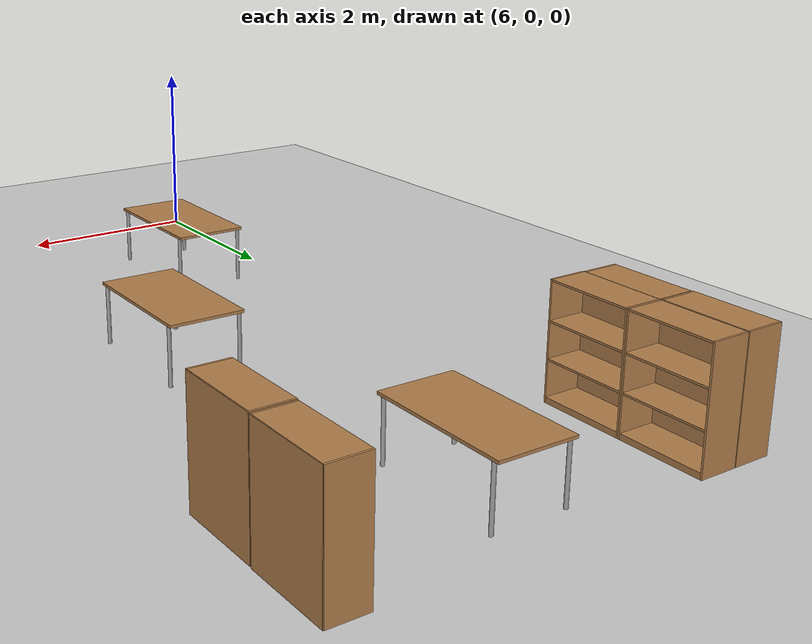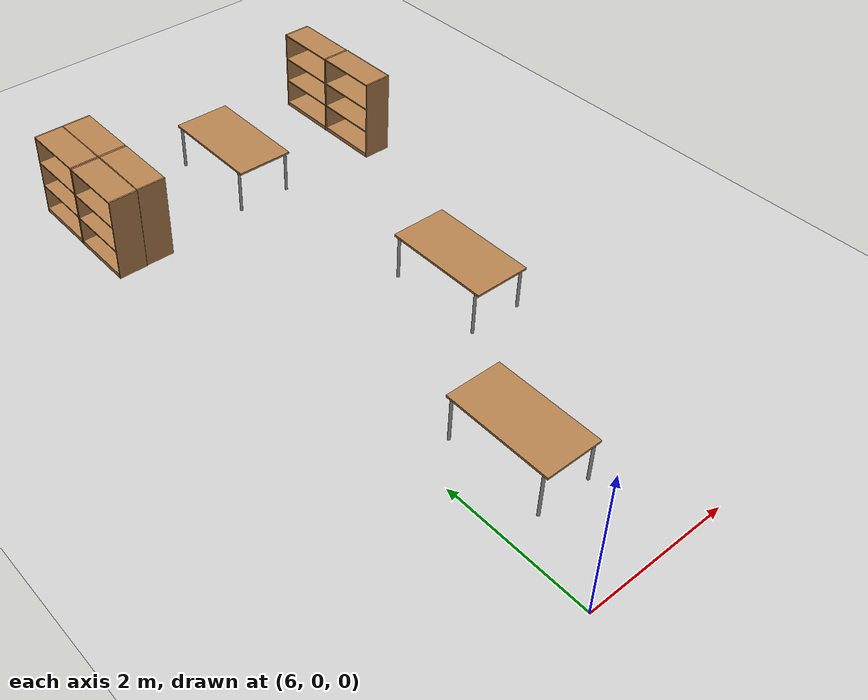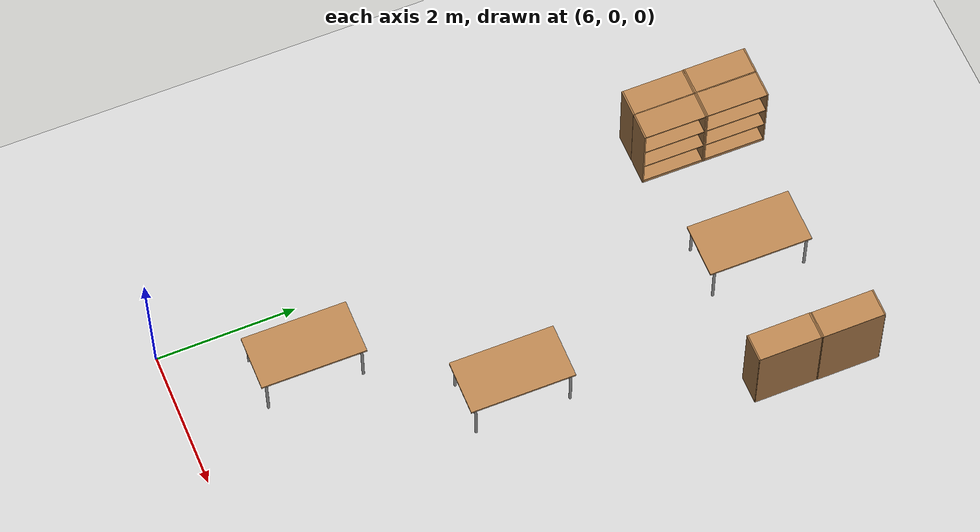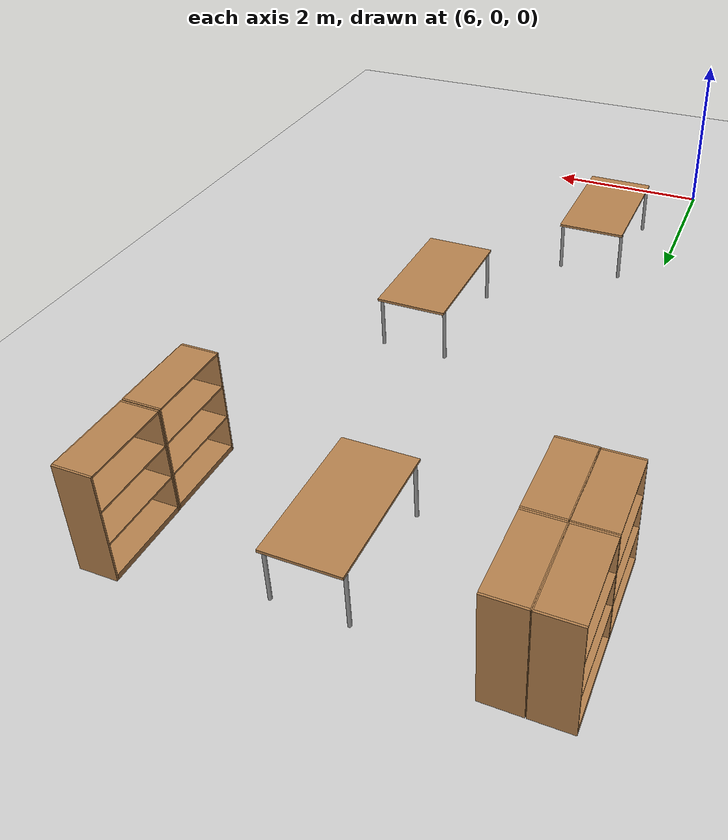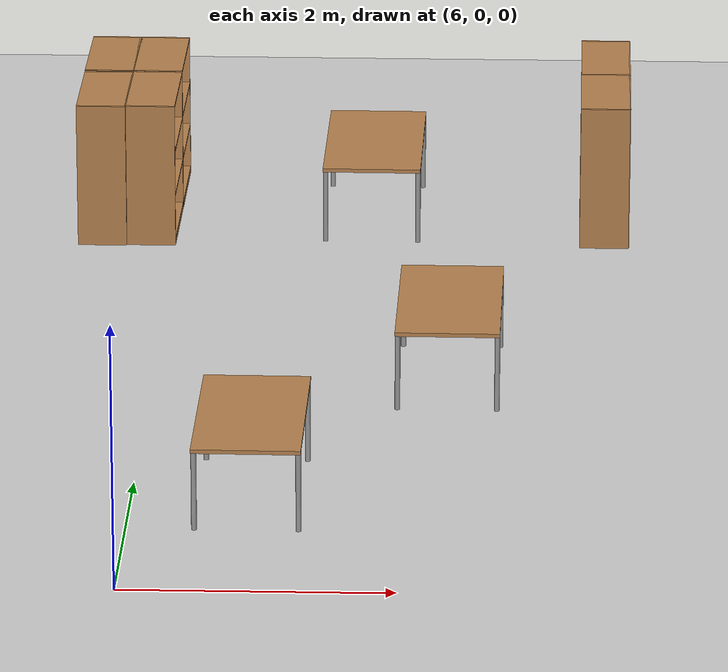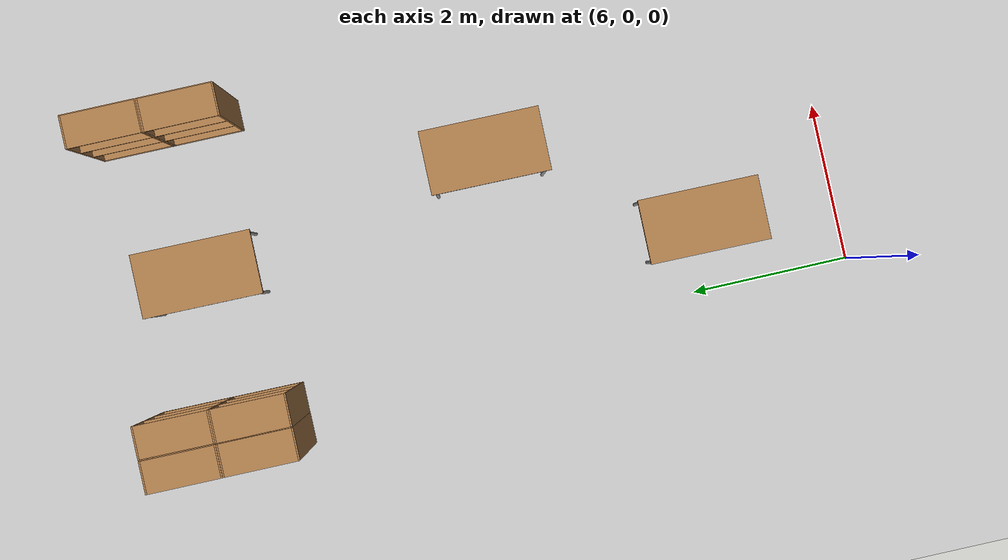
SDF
<sdf version="1.7">
 <world name="default">
  <model name="ground_plane">
   <static>1</static>
   <link name="link">
    <collision name="collision_collision">
     <geometry><plane><normal>0 0 1</normal><size>100 100</size></plane></geometry>
     <surface>
      <contact><collide_bitmask>65535</collide_bitmask></contact>
      <friction><ode><mu>100</mu><mu2>50</mu2></ode></friction>
     </surface>
    </collision>
    <visual name="visual">
     <cast_shadows>0</cast_shadows>
     <geometry><plane><normal>0 0 1</normal><size>100 100</size></plane></geometry>
     <material>
      <script><uri>file://media/materials/scripts/gazebo.material</uri><name>Gazebo/Grey</name></script>
     </material>
    </visual>
   </link>
  </model>
  <model name="bookshelf">
   <static>1</static>
   <link name="link">
    <inertial><mass>1</mass></inertial>
    <collision name="collision_back">
     <pose>0 0.005 0.6 0 -0 0</pose>
     <geometry><box><size>0.9 0.01 1.2</size></box></geometry>
    </collision>
    <visual name="visual1">
     <pose>0 0.005 0.6 0 -0 0</pose>
     <geometry><box><size>0.9 0.01 1.2</size></box></geometry>
     <material>
      <script><uri>file://media/materials/scripts/gazebo.material</uri><name>Gazebo/Wood</name></script>
     </material>
    </visual>
    <collision name="collision_left_side">
     <pose>0.45 -0.195 0.6 0 -0 0</pose>
     <geometry><box><size>0.02 0.4 1.2</size></box></geometry>
    </collision>
    <visual name="visual2">
     <pose>0.45 -0.195 0.6 0 -0 0</pose>
     <geometry><box><size>0.02 0.4 1.2</size></box></geometry>
     <material>
      <script><uri>file://media/materials/scripts/gazebo.material</uri><name>Gazebo/Wood</name></script>
     </material>
    </visual>
    <collision name="collision_right_side">
     <pose>-0.45 -0.195 0.6 0 -0 0</pose>
     <geometry><box><size>0.02 0.4 1.2</size></box></geometry>
    </collision>
    <visual name="visual3">
     <pose>-0.45 -0.195 0.6 0 -0 0</pose>
     <geometry><box><size>0.02 0.4 1.2</size></box></geometry>
     <material>
      <script><uri>file://media/materials/scripts/gazebo.material</uri><name>Gazebo/Wood</name></script>
     </material>
    </visual>
    <collision name="collision_bottom">
     <pose>0 -0.195 0.03 0 -0 0</pose>
     <geometry><box><size>0.88 0.4 0.06</size></box></geometry>
    </collision>
    <visual name="visual4">
     <pose>0 -0.195 0.03 0 -0 0</pose>
     <geometry><box><size>0.88 0.4 0.06</size></box></geometry>
     <material>
      <script><uri>file://media/materials/scripts/gazebo.material</uri><name>Gazebo/Wood</name></script>
     </material>
    </visual>
    <collision name="collision_top">
     <pose>0 -0.195 1.19 0 -0 0</pose>
     <geometry><box><size>0.88 0.4 0.02</size></box></geometry>
    </collision>
    <visual name="visual5">
     <pose>0 -0.195 1.19 0 -0 0</pose>
     <geometry><box><size>0.88 0.4 0.02</size></box></geometry>
     <material>
      <script><uri>file://media/materials/scripts/gazebo.material</uri><name>Gazebo/Wood</name></script>
     </material>
    </visual>
    <collision name="collision_low_shelf">
     <pose>0 -0.195 0.43 0 -0 0</pose>
     <geometry><box><size>0.88 0.4 0.02</size></box></geometry>
    </collision>
    <visual name="visual6">
     <pose>0 -0.195 0.43 0 -0 0</pose>
     <geometry><box><size>0.88 0.4 0.02</size></box></geometry>
     <material>
      <script><uri>file://media/materials/scripts/gazebo.material</uri><name>Gazebo/Wood</name></script>
     </material>
    </visual>
    <collision name="collision_high_shelf">
     <pose>0 -0.195 0.8 0 -0 0</pose>
     <geometry><box><size>0.88 0.4 0.02</size></box></geometry>
    </collision>
    <visual name="visual7">
     <pose>0 -0.195 0.8 0 -0 0</pose>
     <geometry><box><size>0.88 0.4 0.02</size></box></geometry>
     <material>
      <script><uri>file://media/materials/scripts/gazebo.material</uri><name>Gazebo/Wood</name></script>
     </material>
    </visual>
   </link>
   <pose>9.69489 8.56092 0 0 0 -1.57362</pose>
  </model>
  <model name="bookshelf_clone">
   <static>1</static>
   <link name="link">
    <inertial><mass>1</mass></inertial>
    <collision name="collision_back">
     <pose>0 0.005 0.6 0 -0 0</pose>
     <geometry><box><size>0.9 0.01 1.2</size></box></geometry>
    </collision>
    <visual name="visual1">
     <pose>0 0.005 0.6 0 -0 0</pose>
     <geometry><box><size>0.9 0.01 1.2</size></box></geometry>
     <material>
      <script><uri>file://media/materials/scripts/gazebo.material</uri><name>Gazebo/Wood</name></script>
     </material>
    </visual>
    <collision name="collision_left_side">
     <pose>0.45 -0.195 0.6 0 -0 0</pose>
     <geometry><box><size>0.02 0.4 1.2</size></box></geometry>
    </collision>
    <visual name="visual2">
     <pose>0.45 -0.195 0.6 0 -0 0</pose>
     <geometry><box><size>0.02 0.4 1.2</size></box></geometry>
     <material>
      <script><uri>file://media/materials/scripts/gazebo.material</uri><name>Gazebo/Wood</name></script>
     </material>
    </visual>
    <collision name="collision_right_side">
     <pose>-0.45 -0.195 0.6 0 -0 0</pose>
     <geometry><box><size>0.02 0.4 1.2</size></box></geometry>
    </collision>
    <visual name="visual3">
     <pose>-0.45 -0.195 0.6 0 -0 0</pose>
     <geometry><box><size>0.02 0.4 1.2</size></box></geometry>
     <material>
      <script><uri>file://media/materials/scripts/gazebo.material</uri><name>Gazebo/Wood</name></script>
     </material>
    </visual>
    <collision name="collision_bottom">
     <pose>0 -0.195 0.03 0 -0 0</pose>
     <geometry><box><size>0.88 0.4 0.06</size></box></geometry>
    </collision>
    <visual name="visual4">
     <pose>0 -0.195 0.03 0 -0 0</pose>
     <geometry><box><size>0.88 0.4 0.06</size></box></geometry>
     <material>
      <script><uri>file://media/materials/scripts/gazebo.material</uri><name>Gazebo/Wood</name></script>
     </material>
    </visual>
    <collision name="collision_top">
     <pose>0 -0.195 1.19 0 -0 0</pose>
     <geometry><box><size>0.88 0.4 0.02</size></box></geometry>
    </collision>
    <visual name="visual5">
     <pose>0 -0.195 1.19 0 -0 0</pose>
     <geometry><box><size>0.88 0.4 0.02</size></box></geometry>
     <material>
      <script><uri>file://media/materials/scripts/gazebo.material</uri><name>Gazebo/Wood</name></script>
     </material>
    </visual>
    <collision name="collision_low_shelf">
     <pose>0 -0.195 0.43 0 -0 0</pose>
     <geometry><box><size>0.88 0.4 0.02</size></box></geometry>
    </collision>
    <visual name="visual6">
     <pose>0 -0.195 0.43 0 -0 0</pose>
     <geometry><box><size>0.88 0.4 0.02</size></box></geometry>
     <material>
      <script><uri>file://media/materials/scripts/gazebo.material</uri><name>Gazebo/Wood</name></script>
     </material>
    </visual>
    <collision name="collision_high_shelf">
     <pose>0 -0.195 0.8 0 -0 0</pose>
     <geometry><box><size>0.88 0.4 0.02</size></box></geometry>
    </collision>
    <visual name="visual7">
     <pose>0 -0.195 0.8 0 -0 0</pose>
     <geometry><box><size>0.88 0.4 0.02</size></box></geometry>
     <material>
      <script><uri>file://media/materials/scripts/gazebo.material</uri><name>Gazebo/Wood</name></script>
     </material>
    </visual>
   </link>
   <pose>9.69035 7.64256 0.006434 0 0 -1.57362</pose>
  </model>
  <model name="Table">
   <static>1</static>
   <link name="link_2">
    <collision name="collision_surface">
     <pose>0 0 1 0 -0 0</pose>
     <geometry><box><size>1.5 0.8 0.03</size></box></geometry>
     <surface><friction><ode><mu>0.6</mu><mu2>0.6</mu2></ode></friction></surface>
    </collision>
    <visual name="visual1">
     <pose>0 0 1 0 -0 0</pose>
     <geometry><box><size>1.5 0.8 0.03</size></box></geometry>
     <material>
      <diffuse>1 1 1 1</diffuse>
      <script><uri>file://media/materials/scripts/gazebo.material</uri><name>Gazebo/Wood</name></script>
      <pbr>
       <metal>
        <albedo_map>https://fuel.ignitionrobotics.org/1.0/openrobotics/models/table/4/files/Table_Diffuse.jpg</albedo_map>
       </metal>
      </pbr>
     </material>
    </visual>
    <collision name="collision_front_left_leg">
     <pose>0.68 0.38 0.5 0 -0 0</pose>
     <geometry><cylinder><radius>0.02</radius><length>1</length></cylinder></geometry>
    </collision>
    <visual name="front_left_leg">
     <pose>0.68 0.38 0.5 0 -0 0</pose>
     <geometry><cylinder><radius>0.02</radius><length>1</length></cylinder></geometry>
     <material>
      <diffuse>0.5 0.5 0.5 1</diffuse>
      <script><uri>file://media/materials/scripts/gazebo.material</uri><name>Gazebo/Grey</name></script>
     </material>
    </visual>
    <collision name="collision_front_right_leg">
     <pose>0.68 -0.38 0.5 0 -0 0</pose>
     <geometry><cylinder><radius>0.02</radius><length>1</length></cylinder></geometry>
    </collision>
    <visual name="front_right_leg">
     <pose>0.68 -0.38 0.5 0 -0 0</pose>
     <geometry><cylinder><radius>0.02</radius><length>1</length></cylinder></geometry>
     <material>
      <diffuse>0.5 0.5 0.5 1</diffuse>
      <script><uri>file://media/materials/scripts/gazebo.material</uri><name>Gazebo/Grey</name></script>
     </material>
    </visual>
    <collision name="collision_back_right_leg">
     <pose>-0.68 -0.38 0.5 0 -0 0</pose>
     <geometry><cylinder><radius>0.02</radius><length>1</length></cylinder></geometry>
    </collision>
    <visual name="back_right_leg">
     <pose>-0.68 -0.38 0.5 0 -0 0</pose>
     <geometry><cylinder><radius>0.02</radius><length>1</length></cylinder></geometry>
     <material>
      <diffuse>0.5 0.5 0.5 1</diffuse>
      <script><uri>file://media/materials/scripts/gazebo.material</uri><name>Gazebo/Grey</name></script>
     </material>
    </visual>
    <collision name="collision_back_left_leg">
     <pose>-0.68 0.38 0.5 0 -0 0</pose>
     <geometry><cylinder><radius>0.02</radius><length>1</length></cylinder></geometry>
    </collision>
    <visual name="back_left_leg">
     <pose>-0.68 0.38 0.5 0 -0 0</pose>
     <geometry><cylinder><radius>0.02</radius><length>1</length></cylinder></geometry>
     <material>
      <diffuse>0.5 0.5 0.5 1</diffuse>
      <script><uri>file://media/materials/scripts/gazebo.material</uri><name>Gazebo/Grey</name></script>
     </material>
    </visual>
   </link>
   <pose>7.59173 8.01933 -0.374563 0 0 -1.57844</pose>
  </model>
  <model name="bookshelf_clone_0">
   <static>1</static>
   <link name="link">
    <inertial><mass>1</mass></inertial>
    <collision name="collision_back">
     <pose>0 0.005 0.6 0 -0 0</pose>
     <geometry><box><size>0.9 0.01 1.2</size></box></geometry>
    </collision>
    <visual name="visual1">
     <pose>0 0.005 0.6 0 -0 0</pose>
     <geometry><box><size>0.9 0.01 1.2</size></box></geometry>
     <material>
      <script><uri>file://media/materials/scripts/gazebo.material</uri><name>Gazebo/Wood</name></script>
     </material>
    </visual>
    <collision name="collision_left_side">
     <pose>0.45 -0.195 0.6 0 -0 0</pose>
     <geometry><box><size>0.02 0.4 1.2</size></box></geometry>
    </collision>
    <visual name="visual2">
     <pose>0.45 -0.195 0.6 0 -0 0</pose>
     <geometry><box><size>0.02 0.4 1.2</size></box></geometry>
     <material>
      <script><uri>file://media/materials/scripts/gazebo.material</uri><name>Gazebo/Wood</name></script>
     </material>
    </visual>
    <collision name="collision_right_side">
     <pose>-0.45 -0.195 0.6 0 -0 0</pose>
     <geometry><box><size>0.02 0.4 1.2</size></box></geometry>
    </collision>
    <visual name="visual3">
     <pose>-0.45 -0.195 0.6 0 -0 0</pose>
     <geometry><box><size>0.02 0.4 1.2</size></box></geometry>
     <material>
      <script><uri>file://media/materials/scripts/gazebo.material</uri><name>Gazebo/Wood</name></script>
     </material>
    </visual>
    <collision name="collision_bottom">
     <pose>0 -0.195 0.03 0 -0 0</pose>
     <geometry><box><size>0.88 0.4 0.06</size></box></geometry>
    </collision>
    <visual name="visual4">
     <pose>0 -0.195 0.03 0 -0 0</pose>
     <geometry><box><size>0.88 0.4 0.06</size></box></geometry>
     <material>
      <script><uri>file://media/materials/scripts/gazebo.material</uri><name>Gazebo/Wood</name></script>
     </material>
    </visual>
    <collision name="collision_top">
     <pose>0 -0.195 1.19 0 -0 0</pose>
     <geometry><box><size>0.88 0.4 0.02</size></box></geometry>
    </collision>
    <visual name="visual5">
     <pose>0 -0.195 1.19 0 -0 0</pose>
     <geometry><box><size>0.88 0.4 0.02</size></box></geometry>
     <material>
      <script><uri>file://media/materials/scripts/gazebo.material</uri><name>Gazebo/Wood</name></script>
     </material>
    </visual>
    <collision name="collision_low_shelf">
     <pose>0 -0.195 0.43 0 -0 0</pose>
     <geometry><box><size>0.88 0.4 0.02</size></box></geometry>
    </collision>
    <visual name="visual6">
     <pose>0 -0.195 0.43 0 -0 0</pose>
     <geometry><box><size>0.88 0.4 0.02</size></box></geometry>
     <material>
      <script><uri>file://media/materials/scripts/gazebo.material</uri><name>Gazebo/Wood</name></script>
     </material>
    </visual>
    <collision name="collision_high_shelf">
     <pose>0 -0.195 0.8 0 -0 0</pose>
     <geometry><box><size>0.88 0.4 0.02</size></box></geometry>
    </collision>
    <visual name="visual7">
     <pose>0 -0.195 0.8 0 -0 0</pose>
     <geometry><box><size>0.88 0.4 0.02</size></box></geometry>
     <material>
      <script><uri>file://media/materials/scripts/gazebo.material</uri><name>Gazebo/Wood</name></script>
     </material>
    </visual>
   </link>
   <pose>5.57697 8.53545 0 0 0 -1.57362</pose>
  </model>
  <model name="bookshelf_clone_1">
   <static>1</static>
   <link name="link">
    <inertial><mass>1</mass></inertial>
    <collision name="collision_back">
     <pose>0 0.005 0.6 0 -0 0</pose>
     <geometry><box><size>0.9 0.01 1.2</size></box></geometry>
    </collision>
    <visual name="visual1">
     <pose>0 0.005 0.6 0 -0 0</pose>
     <geometry><box><size>0.9 0.01 1.2</size></box></geometry>
     <material>
      <script><uri>file://media/materials/scripts/gazebo.material</uri><name>Gazebo/Wood</name></script>
     </material>
    </visual>
    <collision name="collision_left_side">
     <pose>0.45 -0.195 0.6 0 -0 0</pose>
     <geometry><box><size>0.02 0.4 1.2</size></box></geometry>
    </collision>
    <visual name="visual2">
     <pose>0.45 -0.195 0.6 0 -0 0</pose>
     <geometry><box><size>0.02 0.4 1.2</size></box></geometry>
     <material>
      <script><uri>file://media/materials/scripts/gazebo.material</uri><name>Gazebo/Wood</name></script>
     </material>
    </visual>
    <collision name="collision_right_side">
     <pose>-0.45 -0.195 0.6 0 -0 0</pose>
     <geometry><box><size>0.02 0.4 1.2</size></box></geometry>
    </collision>
    <visual name="visual3">
     <pose>-0.45 -0.195 0.6 0 -0 0</pose>
     <geometry><box><size>0.02 0.4 1.2</size></box></geometry>
     <material>
      <script><uri>file://media/materials/scripts/gazebo.material</uri><name>Gazebo/Wood</name></script>
     </material>
    </visual>
    <collision name="collision_bottom">
     <pose>0 -0.195 0.03 0 -0 0</pose>
     <geometry><box><size>0.88 0.4 0.06</size></box></geometry>
    </collision>
    <visual name="visual4">
     <pose>0 -0.195 0.03 0 -0 0</pose>
     <geometry><box><size>0.88 0.4 0.06</size></box></geometry>
     <material>
      <script><uri>file://media/materials/scripts/gazebo.material</uri><name>Gazebo/Wood</name></script>
     </material>
    </visual>
    <collision name="collision_top">
     <pose>0 -0.195 1.19 0 -0 0</pose>
     <geometry><box><size>0.88 0.4 0.02</size></box></geometry>
    </collision>
    <visual name="visual5">
     <pose>0 -0.195 1.19 0 -0 0</pose>
     <geometry><box><size>0.88 0.4 0.02</size></box></geometry>
     <material>
      <script><uri>file://media/materials/scripts/gazebo.material</uri><name>Gazebo/Wood</name></script>
     </material>
    </visual>
    <collision name="collision_low_shelf">
     <pose>0 -0.195 0.43 0 -0 0</pose>
     <geometry><box><size>0.88 0.4 0.02</size></box></geometry>
    </collision>
    <visual name="visual6">
     <pose>0 -0.195 0.43 0 -0 0</pose>
     <geometry><box><size>0.88 0.4 0.02</size></box></geometry>
     <material>
      <script><uri>file://media/materials/scripts/gazebo.material</uri><name>Gazebo/Wood</name></script>
     </material>
    </visual>
    <collision name="collision_high_shelf">
     <pose>0 -0.195 0.8 0 -0 0</pose>
     <geometry><box><size>0.88 0.4 0.02</size></box></geometry>
    </collision>
    <visual name="visual7">
     <pose>0 -0.195 0.8 0 -0 0</pose>
     <geometry><box><size>0.88 0.4 0.02</size></box></geometry>
     <material>
      <script><uri>file://media/materials/scripts/gazebo.material</uri><name>Gazebo/Wood</name></script>
     </material>
    </visual>
   </link>
   <pose>5.57449 7.61623 -0.00514 0 0 -1.57362</pose>
  </model>
  <model name="bookshelf_clone_0_clone">
   <static>1</static>
   <link name="link">
    <inertial><mass>1</mass></inertial>
    <collision name="collision_back">
     <pose>0 0.005 0.6 0 -0 0</pose>
     <geometry><box><size>0.9 0.01 1.2</size></box></geometry>
    </collision>
    <visual name="visual1">
     <pose>0 0.005 0.6 0 -0 0</pose>
     <geometry><box><size>0.9 0.01 1.2</size></box></geometry>
     <material>
      <script><uri>file://media/materials/scripts/gazebo.material</uri><name>Gazebo/Wood</name></script>
     </material>
    </visual>
    <collision name="collision_left_side">
     <pose>0.45 -0.195 0.6 0 -0 0</pose>
     <geometry><box><size>0.02 0.4 1.2</size></box></geometry>
    </collision>
    <visual name="visual2">
     <pose>0.45 -0.195 0.6 0 -0 0</pose>
     <geometry><box><size>0.02 0.4 1.2</size></box></geometry>
     <material>
      <script><uri>file://media/materials/scripts/gazebo.material</uri><name>Gazebo/Wood</name></script>
     </material>
    </visual>
    <collision name="collision_right_side">
     <pose>-0.45 -0.195 0.6 0 -0 0</pose>
     <geometry><box><size>0.02 0.4 1.2</size></box></geometry>
    </collision>
    <visual name="visual3">
     <pose>-0.45 -0.195 0.6 0 -0 0</pose>
     <geometry><box><size>0.02 0.4 1.2</size></box></geometry>
     <material>
      <script><uri>file://media/materials/scripts/gazebo.material</uri><name>Gazebo/Wood</name></script>
     </material>
    </visual>
    <collision name="collision_bottom">
     <pose>0 -0.195 0.03 0 -0 0</pose>
     <geometry><box><size>0.88 0.4 0.06</size></box></geometry>
    </collision>
    <visual name="visual4">
     <pose>0 -0.195 0.03 0 -0 0</pose>
     <geometry><box><size>0.88 0.4 0.06</size></box></geometry>
     <material>
      <script><uri>file://media/materials/scripts/gazebo.material</uri><name>Gazebo/Wood</name></script>
     </material>
    </visual>
    <collision name="collision_top">
     <pose>0 -0.195 1.19 0 -0 0</pose>
     <geometry><box><size>0.88 0.4 0.02</size></box></geometry>
    </collision>
    <visual name="visual5">
     <pose>0 -0.195 1.19 0 -0 0</pose>
     <geometry><box><size>0.88 0.4 0.02</size></box></geometry>
     <material>
      <script><uri>file://media/materials/scripts/gazebo.material</uri><name>Gazebo/Wood</name></script>
     </material>
    </visual>
    <collision name="collision_low_shelf">
     <pose>0 -0.195 0.43 0 -0 0</pose>
     <geometry><box><size>0.88 0.4 0.02</size></box></geometry>
    </collision>
    <visual name="visual6">
     <pose>0 -0.195 0.43 0 -0 0</pose>
     <geometry><box><size>0.88 0.4 0.02</size></box></geometry>
     <material>
      <script><uri>file://media/materials/scripts/gazebo.material</uri><name>Gazebo/Wood</name></script>
     </material>
    </visual>
    <collision name="collision_high_shelf">
     <pose>0 -0.195 0.8 0 -0 0</pose>
     <geometry><box><size>0.88 0.4 0.02</size></box></geometry>
    </collision>
    <visual name="visual7">
     <pose>0 -0.195 0.8 0 -0 0</pose>
     <geometry><box><size>0.88 0.4 0.02</size></box></geometry>
     <material>
      <script><uri>file://media/materials/scripts/gazebo.material</uri><name>Gazebo/Wood</name></script>
     </material>
    </visual>
   </link>
   <pose>5.59628 8.53544 0 0 -0 1.56398</pose>
  </model>
  <model name="bookshelf_clone_0_clone_clone">
   <static>1</static>
   <link name="link">
    <inertial><mass>1</mass></inertial>
    <collision name="collision_back">
     <pose>0 0.005 0.6 0 -0 0</pose>
     <geometry><box><size>0.9 0.01 1.2</size></box></geometry>
    </collision>
    <visual name="visual1">
     <pose>0 0.005 0.6 0 -0 0</pose>
     <geometry><box><size>0.9 0.01 1.2</size></box></geometry>
     <material>
      <script><uri>file://media/materials/scripts/gazebo.material</uri><name>Gazebo/Wood</name></script>
     </material>
    </visual>
    <collision name="collision_left_side">
     <pose>0.45 -0.195 0.6 0 -0 0</pose>
     <geometry><box><size>0.02 0.4 1.2</size></box></geometry>
    </collision>
    <visual name="visual2">
     <pose>0.45 -0.195 0.6 0 -0 0</pose>
     <geometry><box><size>0.02 0.4 1.2</size></box></geometry>
     <material>
      <script><uri>file://media/materials/scripts/gazebo.material</uri><name>Gazebo/Wood</name></script>
     </material>
    </visual>
    <collision name="collision_right_side">
     <pose>-0.45 -0.195 0.6 0 -0 0</pose>
     <geometry><box><size>0.02 0.4 1.2</size></box></geometry>
    </collision>
    <visual name="visual3">
     <pose>-0.45 -0.195 0.6 0 -0 0</pose>
     <geometry><box><size>0.02 0.4 1.2</size></box></geometry>
     <material>
      <script><uri>file://media/materials/scripts/gazebo.material</uri><name>Gazebo/Wood</name></script>
     </material>
    </visual>
    <collision name="collision_bottom">
     <pose>0 -0.195 0.03 0 -0 0</pose>
     <geometry><box><size>0.88 0.4 0.06</size></box></geometry>
    </collision>
    <visual name="visual4">
     <pose>0 -0.195 0.03 0 -0 0</pose>
     <geometry><box><size>0.88 0.4 0.06</size></box></geometry>
     <material>
      <script><uri>file://media/materials/scripts/gazebo.material</uri><name>Gazebo/Wood</name></script>
     </material>
    </visual>
    <collision name="collision_top">
     <pose>0 -0.195 1.19 0 -0 0</pose>
     <geometry><box><size>0.88 0.4 0.02</size></box></geometry>
    </collision>
    <visual name="visual5">
     <pose>0 -0.195 1.19 0 -0 0</pose>
     <geometry><box><size>0.88 0.4 0.02</size></box></geometry>
     <material>
      <script><uri>file://media/materials/scripts/gazebo.material</uri><name>Gazebo/Wood</name></script>
     </material>
    </visual>
    <collision name="collision_low_shelf">
     <pose>0 -0.195 0.43 0 -0 0</pose>
     <geometry><box><size>0.88 0.4 0.02</size></box></geometry>
    </collision>
    <visual name="visual6">
     <pose>0 -0.195 0.43 0 -0 0</pose>
     <geometry><box><size>0.88 0.4 0.02</size></box></geometry>
     <material>
      <script><uri>file://media/materials/scripts/gazebo.material</uri><name>Gazebo/Wood</name></script>
     </material>
    </visual>
    <collision name="collision_high_shelf">
     <pose>0 -0.195 0.8 0 -0 0</pose>
     <geometry><box><size>0.88 0.4 0.02</size></box></geometry>
    </collision>
    <visual name="visual7">
     <pose>0 -0.195 0.8 0 -0 0</pose>
     <geometry><box><size>0.88 0.4 0.02</size></box></geometry>
     <material>
      <script><uri>file://media/materials/scripts/gazebo.material</uri><name>Gazebo/Wood</name></script>
     </material>
    </visual>
   </link>
   <pose>5.5887 7.61717 0 0.002056 -2e-06 1.56319</pose>
  </model>
  <model name="Table_clone_0">
   <static>1</static>
   <link name="link_4">
    <collision name="collision_surface">
     <pose>0 0 1 0 -0 0</pose>
     <geometry><box><size>1.5 0.8 0.03</size></box></geometry>
     <surface><friction><ode><mu>0.6</mu><mu2>0.6</mu2></ode></friction></surface>
    </collision>
    <visual name="visual1">
     <pose>0 0 1 0 -0 0</pose>
     <geometry><box><size>1.5 0.8 0.03</size></box></geometry>
     <material>
      <diffuse>1 1 1 1</diffuse>
      <script><uri>file://media/materials/scripts/gazebo.material</uri><name>Gazebo/Wood</name></script>
      <pbr>
       <metal>
        <albedo_map>https://fuel.ignitionrobotics.org/1.0/openrobotics/models/table/4/files/Table_Diffuse.jpg</albedo_map>
       </metal>
      </pbr>
     </material>
    </visual>
    <collision name="collision_front_left_leg">
     <pose>0.68 0.38 0.5 0 -0 0</pose>
     <geometry><cylinder><radius>0.02</radius><length>1</length></cylinder></geometry>
    </collision>
    <visual name="front_left_leg">
     <pose>0.68 0.38 0.5 0 -0 0</pose>
     <geometry><cylinder><radius>0.02</radius><length>1</length></cylinder></geometry>
     <material>
      <diffuse>0.5 0.5 0.5 1</diffuse>
      <script><uri>file://media/materials/scripts/gazebo.material</uri><name>Gazebo/Grey</name></script>
     </material>
    </visual>
    <collision name="collision_front_right_leg">
     <pose>0.68 -0.38 0.5 0 -0 0</pose>
     <geometry><cylinder><radius>0.02</radius><length>1</length></cylinder></geometry>
    </collision>
    <visual name="front_right_leg">
     <pose>0.68 -0.38 0.5 0 -0 0</pose>
     <geometry><cylinder><radius>0.02</radius><length>1</length></cylinder></geometry>
     <material>
      <diffuse>0.5 0.5 0.5 1</diffuse>
      <script><uri>file://media/materials/scripts/gazebo.material</uri><name>Gazebo/Grey</name></script>
     </material>
    </visual>
    <collision name="collision_back_right_leg">
     <pose>-0.68 -0.38 0.5 0 -0 0</pose>
     <geometry><cylinder><radius>0.02</radius><length>1</length></cylinder></geometry>
    </collision>
    <visual name="back_right_leg">
     <pose>-0.68 -0.38 0.5 0 -0 0</pose>
     <geometry><cylinder><radius>0.02</radius><length>1</length></cylinder></geometry>
     <material>
      <diffuse>0.5 0.5 0.5 1</diffuse>
      <script><uri>file://media/materials/scripts/gazebo.material</uri><name>Gazebo/Grey</name></script>
     </material>
    </visual>
    <collision name="collision_back_left_leg">
     <pose>-0.68 0.38 0.5 0 -0 0</pose>
     <geometry><cylinder><radius>0.02</radius><length>1</length></cylinder></geometry>
    </collision>
    <visual name="back_left_leg">
     <pose>-0.68 0.38 0.5 0 -0 0</pose>
     <geometry><cylinder><radius>0.02</radius><length>1</length></cylinder></geometry>
     <material>
      <diffuse>0.5 0.5 0.5 1</diffuse>
      <script><uri>file://media/materials/scripts/gazebo.material</uri><name>Gazebo/Grey</name></script>
     </material>
    </visual>
   </link>
   <pose>8.28927 4.25295 -0.374563 0 0 -1.57844</pose>
  </model>
  <model name="Table_clone_1">
   <static>1</static>
   <link name="link_5">
    <collision name="collision_surface">
     <pose>0 0 1 0 -0 0</pose>
     <geometry><box><size>1.5 0.8 0.03</size></box></geometry>
     <surface><friction><ode><mu>0.6</mu><mu2>0.6</mu2></ode></friction></surface>
    </collision>
    <visual name="visual1">
     <pose>0 0 1 0 -0 0</pose>
     <geometry><box><size>1.5 0.8 0.03</size></box></geometry>
     <material>
      <diffuse>1 1 1 1</diffuse>
      <script><uri>file://media/materials/scripts/gazebo.material</uri><name>Gazebo/Wood</name></script>
      <pbr>
       <metal>
        <albedo_map>https://fuel.ignitionrobotics.org/1.0/openrobotics/models/table/4/files/Table_Diffuse.jpg</albedo_map>
       </metal>
      </pbr>
     </material>
    </visual>
    <collision name="collision_front_left_leg">
     <pose>0.68 0.38 0.5 0 -0 0</pose>
     <geometry><cylinder><radius>0.02</radius><length>1</length></cylinder></geometry>
    </collision>
    <visual name="front_left_leg">
     <pose>0.68 0.38 0.5 0 -0 0</pose>
     <geometry><cylinder><radius>0.02</radius><length>1</length></cylinder></geometry>
     <material>
      <diffuse>0.5 0.5 0.5 1</diffuse>
      <script><uri>file://media/materials/scripts/gazebo.material</uri><name>Gazebo/Grey</name></script>
     </material>
    </visual>
    <collision name="collision_front_right_leg">
     <pose>0.68 -0.38 0.5 0 -0 0</pose>
     <geometry><cylinder><radius>0.02</radius><length>1</length></cylinder></geometry>
    </collision>
    <visual name="front_right_leg">
     <pose>0.68 -0.38 0.5 0 -0 0</pose>
     <geometry><cylinder><radius>0.02</radius><length>1</length></cylinder></geometry>
     <material>
      <diffuse>0.5 0.5 0.5 1</diffuse>
      <script><uri>file://media/materials/scripts/gazebo.material</uri><name>Gazebo/Grey</name></script>
     </material>
    </visual>
    <collision name="collision_back_right_leg">
     <pose>-0.68 -0.38 0.5 0 -0 0</pose>
     <geometry><cylinder><radius>0.02</radius><length>1</length></cylinder></geometry>
    </collision>
    <visual name="back_right_leg">
     <pose>-0.68 -0.38 0.5 0 -0 0</pose>
     <geometry><cylinder><radius>0.02</radius><length>1</length></cylinder></geometry>
     <material>
      <diffuse>0.5 0.5 0.5 1</diffuse>
      <script><uri>file://media/materials/scripts/gazebo.material</uri><name>Gazebo/Grey</name></script>
     </material>
    </visual>
    <collision name="collision_back_left_leg">
     <pose>-0.68 0.38 0.5 0 -0 0</pose>
     <geometry><cylinder><radius>0.02</radius><length>1</length></cylinder></geometry>
    </collision>
    <visual name="back_left_leg">
     <pose>-0.68 0.38 0.5 0 -0 0</pose>
     <geometry><cylinder><radius>0.02</radius><length>1</length></cylinder></geometry>
     <material>
      <diffuse>0.5 0.5 0.5 1</diffuse>
      <script><uri>file://media/materials/scripts/gazebo.material</uri><name>Gazebo/Grey</name></script>
     </material>
    </visual>
   </link>
   <pose>6.88121 1.82345 -0.374563 0 0 -1.57844</pose>
  </model>
 </world>
</sdf>
